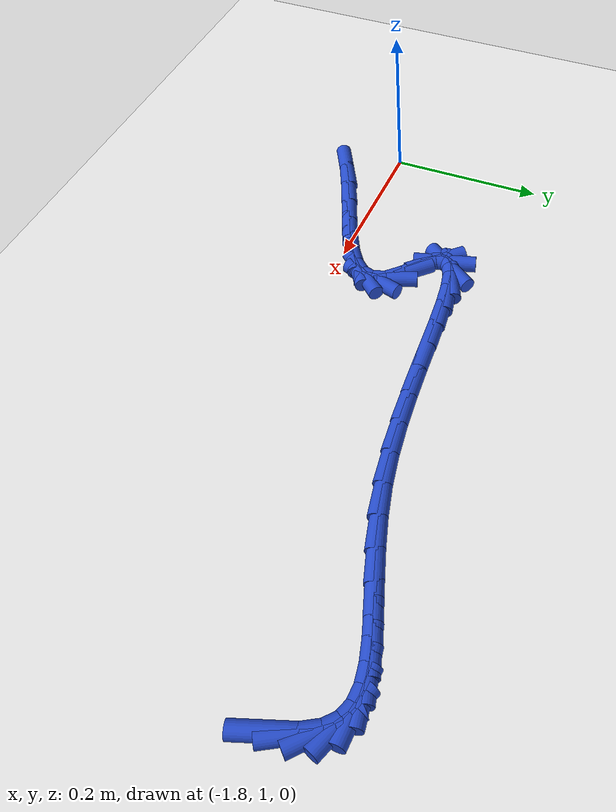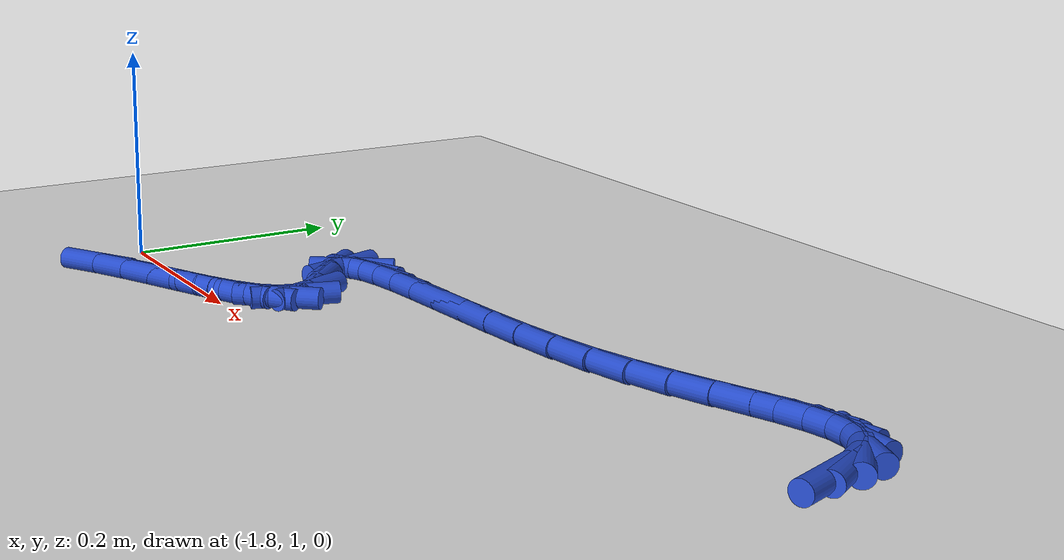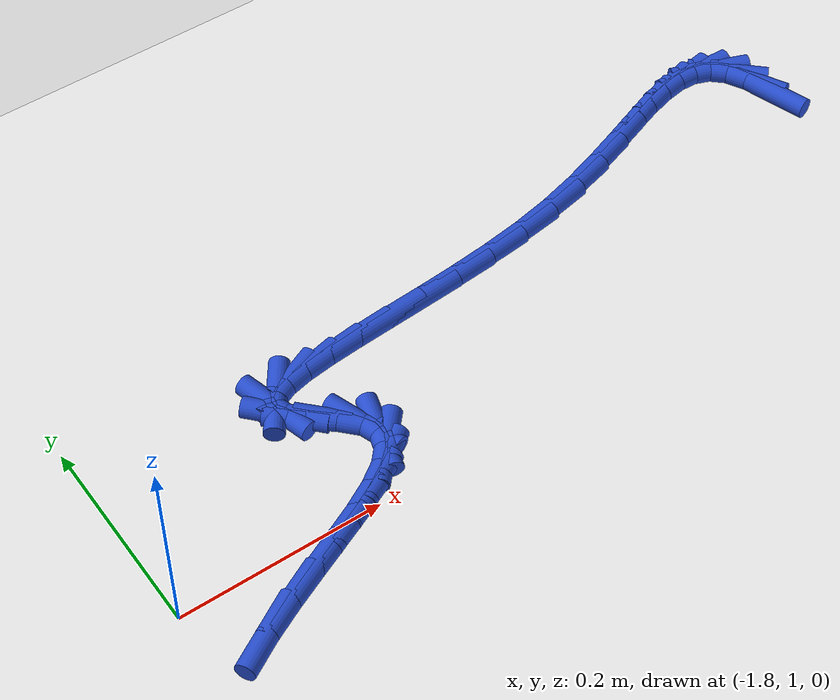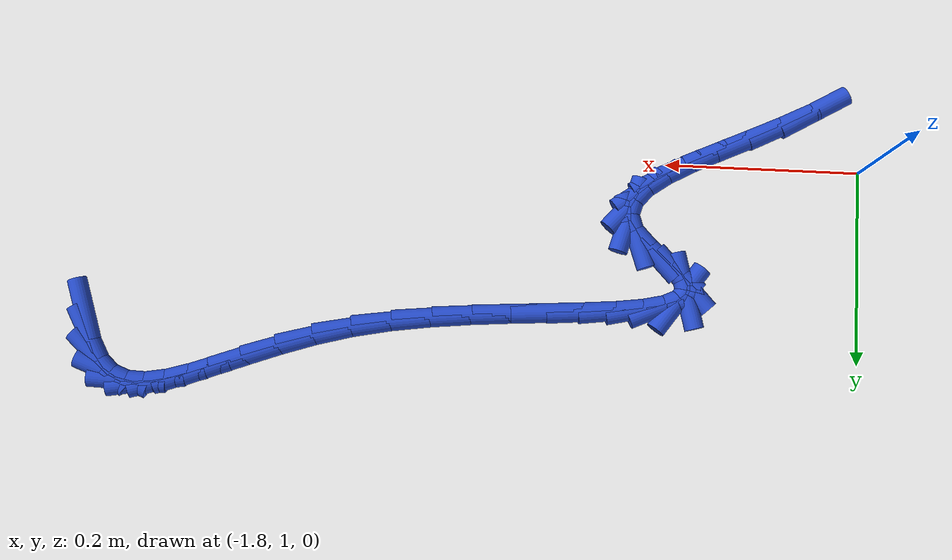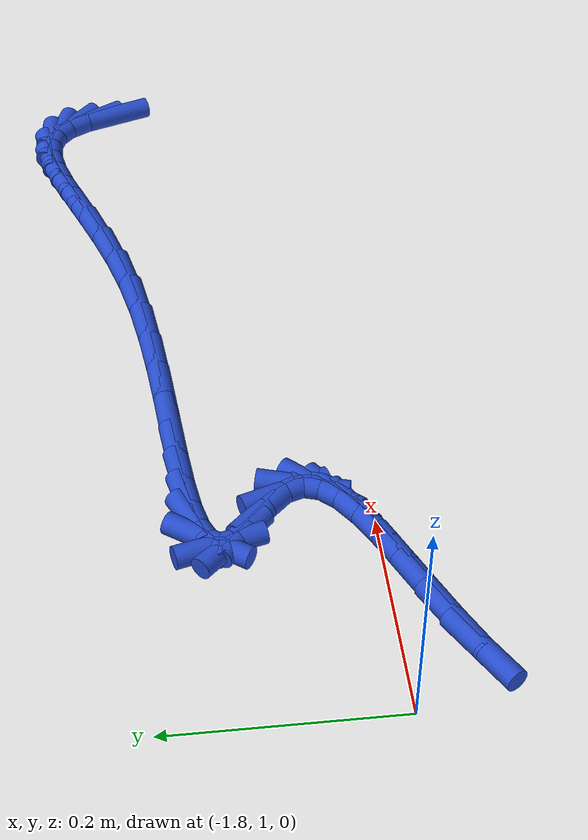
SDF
<sdf version="1.6">
 <world name="default">
  <model name="ground_plane">
   <static>1</static>
   <link name="link">
    <collision name="collision">
     <geometry><plane><normal>0 0 1</normal><size>100 100</size></plane></geometry>
     <surface><friction><ode><mu>100</mu><mu2>50</mu2></ode></friction></surface>
    </collision>
    <visual name="visual">
     <cast_shadows>0</cast_shadows>
     <geometry><plane><normal>0 0 1</normal><size>100 100</size></plane></geometry>
     <material>
      <script><uri>file://media/materials/scripts/gazebo.material</uri><name>Gazebo/WhiteGlow</name></script>
     </material>
    </visual>
   </link>
  </model>
  <model name="line">
   <link name="link_76">
    <pose>-1.0130856444797554 1.186349177556642 0.01 0 1.57 -1.2568634506462935</pose>
    <collision name="collision">
     <geometry><cylinder><radius>0.01</radius><length>0.08</length></cylinder></geometry>
    </collision>
    <visual name="visual">
     <material>
      <script><name>Gazebo/Blue</name><uri>file://media/materials/scripts/gazebo.material</uri></script>
     </material>
     <geometry><cylinder><radius>0.01</radius><length>0.08</length></cylinder></geometry>
    </visual>
   </link>
   <link name="link_77">
    <pose>-1.021081984336622 1.2109783518613981 0.01 0 1.57 -1.0775068919032713</pose>
    <collision name="collision">
     <geometry><cylinder><radius>0.01</radius><length>0.08</length></cylinder></geometry>
    </collision>
    <visual name="visual">
     <material>
      <script><name>Gazebo/Blue</name><uri>file://media/materials/scripts/gazebo.material</uri></script>
     </material>
     <geometry><cylinder><radius>0.01</radius><length>0.08</length></cylinder></geometry>
    </visual>
   </link>
   <link name="link_78">
    <pose>-1.0313287865007021 1.230037883587165 0.01 0 1.57 -0.7561566479385837</pose>
    <collision name="collision">
     <geometry><cylinder><radius>0.01</radius><length>0.08</length></cylinder></geometry>
    </collision>
    <visual name="visual">
     <material>
      <script><name>Gazebo/Blue</name><uri>file://media/materials/scripts/gazebo.material</uri></script>
     </material>
     <geometry><cylinder><radius>0.01</radius><length>0.08</length></cylinder></geometry>
    </visual>
   </link>
   <link name="link_79">
    <pose>-1.0443586131247564 1.2423271310222634 0.01 0 1.57 -0.36205976285928765</pose>
    <collision name="collision">
     <geometry><cylinder><radius>0.01</radius><length>0.08</length></cylinder></geometry>
    </collision>
    <visual name="visual">
     <material>
      <script><name>Gazebo/Blue</name><uri>file://media/materials/scripts/gazebo.material</uri></script>
     </material>
     <geometry><cylinder><radius>0.01</radius><length>0.08</length></cylinder></geometry>
    </visual>
   </link>
   <link name="link_80">
    <pose>-1.0602443992292183 1.2483439720782028 0.01 0 1.57 -0.037126683361793325</pose>
    <collision name="collision">
     <geometry><cylinder><radius>0.01</radius><length>0.08</length></cylinder></geometry>
    </collision>
    <visual name="visual">
     <material>
      <script><name>Gazebo/Blue</name><uri>file://media/materials/scripts/gazebo.material</uri></script>
     </material>
     <geometry><cylinder><radius>0.01</radius><length>0.08</length></cylinder></geometry>
    </visual>
   </link>
   <link name="link_81">
    <pose>-1.0789367687087175 1.249038276798172 0.01 0 1.57 0.16983658937015766</pose>
    <collision name="collision">
     <geometry><cylinder><radius>0.01</radius><length>0.08</length></cylinder></geometry>
    </collision>
    <visual name="visual">
     <material>
      <script><name>Gazebo/Blue</name><uri>file://media/materials/scripts/gazebo.material</uri></script>
     </material>
     <geometry><cylinder><radius>0.01</radius><length>0.08</length></cylinder></geometry>
    </visual>
   </link>
   <link name="link_82">
    <pose>-1.1003863444192725 1.2453599190634645 0.01 0 1.57 0.2859000756634395</pose>
    <collision name="collision">
     <geometry><cylinder><radius>0.01</radius><length>0.08</length></cylinder></geometry>
    </collision>
    <visual name="visual">
     <material>
      <script><name>Gazebo/Blue</name><uri>file://media/materials/scripts/gazebo.material</uri></script>
     </material>
     <geometry><cylinder><radius>0.01</radius><length>0.08</length></cylinder></geometry>
    </visual>
   </link>
   <link name="link_83">
    <pose>-1.1245437492169035 1.2382587727553733 0.01 0 1.57 0.3429237030645823</pose>
    <collision name="collision">
     <geometry><cylinder><radius>0.01</radius><length>0.08</length></cylinder></geometry>
    </collision>
    <visual name="visual">
     <material>
      <script><name>Gazebo/Blue</name><uri>file://media/materials/scripts/gazebo.material</uri></script>
     </material>
     <geometry><cylinder><radius>0.01</radius><length>0.08</length></cylinder></geometry>
    </visual>
   </link>
   <link name="link_84">
    <pose>-1.1513596059576294 1.2286847117551924 0.01 0 1.57 0.3606390608633135</pose>
    <collision name="collision">
     <geometry><cylinder><radius>0.01</radius><length>0.08</length></cylinder></geometry>
    </collision>
    <visual name="visual">
     <material>
      <script><name>Gazebo/Blue</name><uri>file://media/materials/scripts/gazebo.material</uri></script>
     </material>
     <geometry><cylinder><radius>0.01</radius><length>0.08</length></cylinder></geometry>
    </visual>
   </link>
   <link name="link_85">
    <pose>-1.1807845374974688 1.2175876099442147 0.01 0 1.57 0.34986115694825404</pose>
    <collision name="collision">
     <geometry><cylinder><radius>0.01</radius><length>0.08</length></cylinder></geometry>
    </collision>
    <visual name="visual">
     <material>
      <script><name>Gazebo/Blue</name><uri>file://media/materials/scripts/gazebo.material</uri></script>
     </material>
     <geometry><cylinder><radius>0.01</radius><length>0.08</length></cylinder></geometry>
    </visual>
   </link>
   <link name="link_86">
    <pose>-1.2127691666924432 1.205917341203734 0.01 0 1.57 0.31639886438024023</pose>
    <collision name="collision">
     <geometry><cylinder><radius>0.01</radius><length>0.08</length></cylinder></geometry>
    </collision>
    <visual name="visual">
     <material>
      <script><name>Gazebo/Blue</name><uri>file://media/materials/scripts/gazebo.material</uri></script>
     </material>
     <geometry><cylinder><radius>0.01</radius><length>0.08</length></cylinder></geometry>
    </visual>
   </link>
   <link name="link_87">
    <pose>-1.2472641163985712 1.194623779415044 0.01 0 1.57 0.2634316069525452</pose>
    <collision name="collision">
     <geometry><cylinder><radius>0.01</radius><length>0.08</length></cylinder></geometry>
    </collision>
    <visual name="visual">
     <material>
      <script><name>Gazebo/Blue</name><uri>file://media/materials/scripts/gazebo.material</uri></script>
     </material>
     <geometry><cylinder><radius>0.01</radius><length>0.08</length></cylinder></geometry>
    </visual>
   </link>
   <link name="link_88">
    <pose>-1.2842200094718716 1.1846567984594374 0.01 0 1.57 0.1971969911282162</pose>
    <collision name="collision">
     <geometry><cylinder><radius>0.01</radius><length>0.08</length></cylinder></geometry>
    </collision>
    <visual name="visual">
     <material>
      <script><name>Gazebo/Blue</name><uri>file://media/materials/scripts/gazebo.material</uri></script>
     </material>
     <geometry><cylinder><radius>0.01</radius><length>0.08</length></cylinder></geometry>
    </visual>
   </link>
   <link name="link_89">
    <pose>-1.323477576410357 1.1768133918877728 0.01 0 1.57 0.14240186316398526</pose>
    <collision name="collision">
     <geometry><cylinder><radius>0.01</radius><length>0.08</length></cylinder></geometry>
    </collision>
    <visual name="visual">
     <material>
      <script><name>Gazebo/Blue</name><uri>file://media/materials/scripts/gazebo.material</uri></script>
     </material>
     <geometry><cylinder><radius>0.01</radius><length>0.08</length></cylinder></geometry>
    </visual>
   </link>
   <link name="link_90">
    <pose>-1.3642175712392006 1.1709724055009063 0.01 0 1.57 0.10411930980026927</pose>
    <collision name="collision">
     <geometry><cylinder><radius>0.01</radius><length>0.08</length></cylinder></geometry>
    </collision>
    <visual name="visual">
     <material>
      <script><name>Gazebo/Blue</name><uri>file://media/materials/scripts/gazebo.material</uri></script>
     </material>
     <geometry><cylinder><radius>0.01</radius><length>0.08</length></cylinder></geometry>
    </visual>
   </link>
   <link name="link_91">
    <pose>-1.4053755113679962 1.166671516200379 0.01 0 1.57 0.0794081759529195</pose>
    <collision name="collision">
     <geometry><cylinder><radius>0.01</radius><length>0.08</length></cylinder></geometry>
    </collision>
    <visual name="visual">
     <material>
      <script><name>Gazebo/Blue</name><uri>file://media/materials/scripts/gazebo.material</uri></script>
     </material>
     <geometry><cylinder><radius>0.01</radius><length>0.08</length></cylinder></geometry>
    </visual>
   </link>
   <link name="link_92">
    <pose>-1.4458865062366173 1.1634478333273761 0.01 0 1.57 0.06715206622759688</pose>
    <collision name="collision">
     <geometry><cylinder><radius>0.01</radius><length>0.08</length></cylinder></geometry>
    </collision>
    <visual name="visual">
     <material>
      <script><name>Gazebo/Blue</name><uri>file://media/materials/scripts/gazebo.material</uri></script>
     </material>
     <geometry><cylinder><radius>0.01</radius><length>0.08</length></cylinder></geometry>
    </visual>
   </link>
   <link name="link_93">
    <pose>-1.4846856652849376 1.1608384662230835 0.01 0 1.57 0.06812804816555398</pose>
    <collision name="collision">
     <geometry><cylinder><radius>0.01</radius><length>0.08</length></cylinder></geometry>
    </collision>
    <visual name="visual">
     <material>
      <script><name>Gazebo/Blue</name><uri>file://media/materials/scripts/gazebo.material</uri></script>
     </material>
     <geometry><cylinder><radius>0.01</radius><length>0.08</length></cylinder></geometry>
    </visual>
   </link>
   <link name="link_94">
    <pose>-1.520708097952829 1.1583805242286862 0.01 0 1.57 0.08584621054980361</pose>
    <collision name="collision">
     <geometry><cylinder><radius>0.01</radius><length>0.08</length></cylinder></geometry>
    </collision>
    <visual name="visual">
     <material>
      <script><name>Gazebo/Blue</name><uri>file://media/materials/scripts/gazebo.material</uri></script>
     </material>
     <geometry><cylinder><radius>0.01</radius><length>0.08</length></cylinder></geometry>
    </visual>
   </link>
   <link name="link_95">
    <pose>-1.552888913680165 1.1556111166853698 0.01 0 1.57 0.12920663128514662</pose>
    <collision name="collision">
     <geometry><cylinder><radius>0.01</radius><length>0.08</length></cylinder></geometry>
    </collision>
    <visual name="visual">
     <material>
      <script><name>Gazebo/Blue</name><uri>file://media/materials/scripts/gazebo.material</uri></script>
     </material>
     <geometry><cylinder><radius>0.01</radius><length>0.08</length></cylinder></geometry>
    </visual>
   </link>
   <link name="link_96">
    <pose>-1.5801632219068185 1.1520673529343195 0.01 0 1.57 0.22077177443539628</pose>
    <collision name="collision">
     <geometry><cylinder><radius>0.01</radius><length>0.08</length></cylinder></geometry>
    </collision>
    <visual name="visual">
     <material>
      <script><name>Gazebo/Blue</name><uri>file://media/materials/scripts/gazebo.material</uri></script>
     </material>
     <geometry><cylinder><radius>0.01</radius><length>0.08</length></cylinder></geometry>
    </visual>
   </link>
   <link name="link_97">
    <pose>-1.6014661320726626 1.1472863423167208 0.01 0 1.57 0.4264137059957595</pose>
    <collision name="collision">
     <geometry><cylinder><radius>0.01</radius><length>0.08</length></cylinder></geometry>
    </collision>
    <visual name="visual">
     <material>
      <script><name>Gazebo/Blue</name><uri>file://media/materials/scripts/gazebo.material</uri></script>
     </material>
     <geometry><cylinder><radius>0.01</radius><length>0.08</length></cylinder></geometry>
    </visual>
   </link>
   <link name="link_98">
    <pose>-1.6157327536175692 1.1408051941737591 0.01 0 1.57 0.9512342452555249</pose>
    <collision name="collision">
     <geometry><cylinder><radius>0.01</radius><length>0.08</length></cylinder></geometry>
    </collision>
    <visual name="visual">
     <material>
      <script><name>Gazebo/Blue</name><uri>file://media/materials/scripts/gazebo.material</uri></script>
     </material>
     <geometry><cylinder><radius>0.01</radius><length>0.08</length></cylinder></geometry>
    </visual>
   </link>
   <link name="link_99">
    <pose>-1.6218981959814127 1.1321610178466195 0.01 0 1.57 -1.310585917778448</pose>
    <collision name="collision">
     <geometry><cylinder><radius>0.01</radius><length>0.08</length></cylinder></geometry>
    </collision>
    <visual name="visual">
     <material>
      <script><name>Gazebo/Blue</name><uri>file://media/materials/scripts/gazebo.material</uri></script>
     </material>
     <geometry><cylinder><radius>0.01</radius><length>0.08</length></cylinder></geometry>
    </visual>
   </link>
   <link name="link_100">
    <pose>-1.6188975686040659 1.120890922676488 0.01 0 1.57 -0.8267706291129698</pose>
    <collision name="collision">
     <geometry><cylinder><radius>0.01</radius><length>0.08</length></cylinder></geometry>
    </collision>
    <visual name="visual">
     <material>
      <script><name>Gazebo/Blue</name><uri>file://media/materials/scripts/gazebo.material</uri></script>
     </material>
     <geometry><cylinder><radius>0.01</radius><length>0.08</length></cylinder></geometry>
    </visual>
   </link>
   <link name="link_101">
    <pose>-1.6056839802090814 1.1065361103567135 0.01 0 1.57 -0.6910606036491262</pose>
    <collision name="collision">
     <geometry><cylinder><radius>0.01</radius><length>0.08</length></cylinder></geometry>
    </collision>
    <visual name="visual">
     <material>
      <script><name>Gazebo/Blue</name><uri>file://media/materials/scripts/gazebo.material</uri></script>
     </material>
     <geometry><cylinder><radius>0.01</radius><length>0.08</length></cylinder></geometry>
    </visual>
   </link>
   <link name="link_102">
    <pose>-1.585119048216027 1.0895264287236603 0.01 0 1.57 -0.8102092636171482</pose>
    <collision name="collision">
     <geometry><cylinder><radius>0.01</radius><length>0.08</length></cylinder></geometry>
    </collision>
    <visual name="visual">
     <material>
      <script><name>Gazebo/Blue</name><uri>file://media/materials/scripts/gazebo.material</uri></script>
     </material>
     <geometry><cylinder><radius>0.01</radius><length>0.08</length></cylinder></geometry>
    </visual>
   </link>
   <link name="link_103">
    <pose>-1.5686833237765647 1.0722542012563676 0.01 0 1.57 -1.240061202946006</pose>
    <collision name="collision">
     <geometry><cylinder><radius>0.01</radius><length>0.08</length></cylinder></geometry>
    </collision>
    <visual name="visual">
     <material>
      <script><name>Gazebo/Blue</name><uri>file://media/materials/scripts/gazebo.material</uri></script>
     </material>
     <geometry><cylinder><radius>0.01</radius><length>0.08</length></cylinder></geometry>
    </visual>
   </link>
   <link name="link_104">
    <pose>-1.563156485364218 1.0561572284055272 0.01 0 1.57 1.2866348370111431</pose>
    <collision name="collision">
     <geometry><cylinder><radius>0.01</radius><length>0.08</length></cylinder></geometry>
    </collision>
    <visual name="visual">
     <material>
      <script><name>Gazebo/Blue</name><uri>file://media/materials/scripts/gazebo.material</uri></script>
     </material>
     <geometry><cylinder><radius>0.01</radius><length>0.08</length></cylinder></geometry>
    </visual>
   </link>
   <link name="link_105">
    <pose>-1.5675655804752293 1.0410609658085086 0.01 0 1.57 0.8417476068966783</pose>
    <collision name="collision">
     <geometry><cylinder><radius>0.01</radius><length>0.08</length></cylinder></geometry>
    </collision>
    <visual name="visual">
     <material>
      <script><name>Gazebo/Blue</name><uri>file://media/materials/scripts/gazebo.material</uri></script>
     </material>
     <geometry><cylinder><radius>0.01</radius><length>0.08</length></cylinder></geometry>
    </visual>
   </link>
   <link name="link_106">
    <pose>-1.5804097753565223 1.026681083586399 0.01 0 1.57 0.6142094414422354</pose>
    <collision name="collision">
     <geometry><cylinder><radius>0.01</radius><length>0.08</length></cylinder></geometry>
    </collision>
    <visual name="visual">
     <material>
      <script><name>Gazebo/Blue</name><uri>file://media/materials/scripts/gazebo.material</uri></script>
     </material>
     <geometry><cylinder><radius>0.01</radius><length>0.08</length></cylinder></geometry>
    </visual>
   </link>
   <link name="link_107">
    <pose>-1.6001882362550168 1.0127332518602843 0.01 0 1.57 0.5008180255063951</pose>
    <collision name="collision">
     <geometry><cylinder><radius>0.01</radius><length>0.08</length></cylinder></geometry>
    </collision>
    <visual name="visual">
     <material>
      <script><name>Gazebo/Blue</name><uri>file://media/materials/scripts/gazebo.material</uri></script>
     </material>
     <geometry><cylinder><radius>0.01</radius><length>0.08</length></cylinder></geometry>
    </visual>
   </link>
   <link name="link_108">
    <pose>-1.625400129417635 0.9989331407512511 0.01 0 1.57 0.44605110698401496</pose>
    <collision name="collision">
     <geometry><cylinder><radius>0.01</radius><length>0.08</length></cylinder></geometry>
    </collision>
    <visual name="visual">
     <material>
      <script><name>Gazebo/Blue</name><uri>file://media/materials/scripts/gazebo.material</uri></script>
     </material>
     <geometry><cylinder><radius>0.01</radius><length>0.08</length></cylinder></geometry>
    </visual>
   </link>
   <link name="link_109">
    <pose>-1.6545446210912989 0.9849964203803854 0.01 0 1.57 0.42675388072381265</pose>
    <collision name="collision">
     <geometry><cylinder><radius>0.01</radius><length>0.08</length></cylinder></geometry>
    </collision>
    <visual name="visual">
     <material>
      <script><name>Gazebo/Blue</name><uri>file://media/materials/scripts/gazebo.material</uri></script>
     </material>
     <geometry><cylinder><radius>0.01</radius><length>0.08</length></cylinder></geometry>
    </visual>
   </link>
   <link name="link_110">
    <pose>-1.6861208775229295 0.9706387608687737 0.01 0 1.57 0.43391847634310304</pose>
    <collision name="collision">
     <geometry><cylinder><radius>0.01</radius><length>0.08</length></cylinder></geometry>
    </collision>
    <visual name="visual">
     <material>
      <script><name>Gazebo/Blue</name><uri>file://media/materials/scripts/gazebo.material</uri></script>
     </material>
     <geometry><cylinder><radius>0.01</radius><length>0.08</length></cylinder></geometry>
    </visual>
   </link>
   <link name="link_111">
    <pose>-1.7186280649594485 0.9555758323375023 0.01 0 1.57 0.4657466458940102</pose>
    <collision name="collision">
     <geometry><cylinder><radius>0.01</radius><length>0.08</length></cylinder></geometry>
    </collision>
    <visual name="visual">
     <material>
      <script><name>Gazebo/Blue</name><uri>file://media/materials/scripts/gazebo.material</uri></script>
     </material>
     <geometry><cylinder><radius>0.01</radius><length>0.08</length></cylinder></geometry>
    </visual>
   </link>
   <link name="link_112">
    <pose>-1.7505653496477775 0.939523304907658 0.01 0 1.57 0.5256804532666765</pose>
    <collision name="collision">
     <geometry><cylinder><radius>0.01</radius><length>0.08</length></cylinder></geometry>
    </collision>
    <visual name="visual">
     <material>
      <script><name>Gazebo/Blue</name><uri>file://media/materials/scripts/gazebo.material</uri></script>
     </material>
     <geometry><cylinder><radius>0.01</radius><length>0.08</length></cylinder></geometry>
    </visual>
   </link>
  </model>
 </world>
</sdf>
